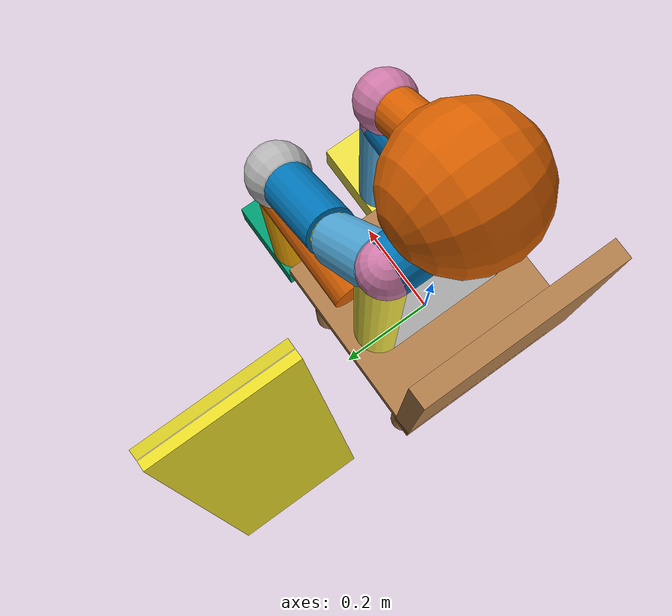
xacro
<?xml version="1.0"?>
<robot name="robot" xmlns:xacro="http://www.ros.org/wiki/xacro">
<!--
Robot model taken from http://wiki.ros.org/pr2_mechanism/Tutorials/SImple%20URDF-Controller%20Example
-->
  <xacro:include filename="$(find human_model_gazebo)/urdf/wheel.xacro"/>

  <xacro:property name="deg_to_rad" value="0.01745329251994329577"/>

  <!-- Constants for robot dimensions -->
  <xacro:property name="human_back_length" value="0.5" />
  <xacro:property name="length" value="0.4" />
  <xacro:property name="width" value="0.4" />
  <xacro:property name="wheel_radius" value="0.11" /> <!-- Link 1 -->
  <xacro:property name="thickness" value="0.086" /> <!-- Link 2 -->
  <xacro:property name="axel_offset" value="0.05" /> <!-- Space btw top of beam and the each joint -->
  <xacro:property name="steer_offset" value="0.02" /> <!-- Link 1 -->
  <xacro:property name="steer_height" value="0.4" />
  <xacro:property name="board_length" value="0.8" />
  <xacro:property name="board_width" value="0.3" />

  <!-- Links: inertial,visual,collision -->
  <link name="base_link">
    <inertial>
      <origin xyz="0 0  0.2" rpy="0 0 0"/>
      <mass value="5"/>
      <inertia ixx="5" ixy="0" ixz="0" iyy="5" iyz="0" izz="5"/>
    </inertial>
    <visual>
      <geometry>
        <box size="${length} ${width} 0.04"/>
      </geometry>
    </visual>
    <collision>

      <origin xyz="0 0 0"/>
      <geometry>
        <box size="${length} ${width} 0.04"/>
      </geometry>
    </collision>
  </link>

  <link name="base_footprint">
    <visual>
      <geometry>
        <sphere radius="0.01"/>
      </geometry>
    </visual>
    <collision>
      <origin xyz="0 0 0"/>
      <geometry>
        <sphere radius="0.00000001"/>
      </geometry>
    </collision>
  </link>
  <joint name="base_footprint_joint" type="fixed">
    <origin xyz="0 0 ${wheel_radius}" rpy="0 0 0"/>
    <child link="base_link"/>
    <parent link="base_footprint"/>
  </joint>

  <!-- Links: inertial,visual,collision -->
  <link name="back_link">
    <inertial>
      <!-- origin is relative -->
      <origin xyz="0 0 0" rpy="0 0 0"/>
      <mass value="5"/>
      <inertia ixx="5" ixy="0" ixz="0" iyy="5" iyz="0" izz="5"/>
    </inertial>
    <visual>
      <geometry>
        <box size="${human_back_length} ${width} 0.04"/>
      </geometry>
    </visual>
    <collision>
      <!-- origin is relative -->
      <origin xyz="0 0 0"/>
      <geometry>
        <box size="${length} ${width} 0.04"/>
      </geometry>
    </collision>
  </link>
  <joint name="base_back_joint" type="fixed">
      <origin xyz="${-length/2.0 + 0.02} 0 ${length/2.0}" rpy="0 ${-90 * deg_to_rad} 0"/>
    <child link="back_link"/>
    <parent link="base_link"/>
  </joint>

  <!-- Links: inertial,visual,collision -->
  <link name="panelfront_link">
    <inertial>
      <!-- origin is relative -->
      <origin xyz="0 0 0" rpy="0 0 0"/>
      <mass value="5"/>
      <inertia ixx="5" ixy="0" ixz="0" iyy="5" iyz="0" izz="5"/>
    </inertial>
    <visual>
      <geometry>
        <box size="${board_length} ${board_width} 0.02"/>
      </geometry>
    </visual>
    <collision>
      <!-- origin is relative -->
      <origin xyz="0 0 0"/>
      <geometry>
        <box size="${board_length} ${board_width} 0.02"/>
      </geometry>
    </collision>
  </link>

  <joint name="base_panelfront_joint" type="fixed">
      <origin xyz="0.08 0.45 -0.005" rpy="0 ${80 * deg_to_rad} 0"/>
    <child link="panelfront_link"/>
    <parent link="base_link"/>
  </joint>

  <!-- Links: inertial,visual,collision -->
  <link name="panelback_link">
    <inertial>
      <!-- origin is relative -->
      <origin xyz="0 0 0" rpy="0 0 0"/>
      <mass value="5"/>
      <inertia ixx="5" ixy="0" ixz="0" iyy="5" iyz="0" izz="5"/>
    </inertial>
    <visual>
      <geometry>
        <box size="${board_length} ${board_width} 0.02"/>
      </geometry>
    </visual>
    <collision>
      <!-- origin is relative -->
      <origin xyz="0 0 0"/>
      <geometry>
        <box size="${board_length} ${board_width} 0.02"/>
      </geometry>
    </collision>
  </link>

  <joint name="base_panelback_joint" type="fixed">
     <origin xyz="-0.08 0.45 -0.005" rpy="0 ${-80 * deg_to_rad} 0"/>
    <child link="panelback_link"/>
    <parent link="base_link"/>
  </joint>

  <!-- Wheels -->
  <front_wheel name="front_right" parent="base" radius="${wheel_radius}" thickness="${thickness}"
      length="${length}" width="${width}" axel_offset="${axel_offset}" right_left="1" steer_height="${steer_height}">
  </front_wheel>
  <front_wheel name="front_left" parent="base" radius="${wheel_radius}" thickness="${thickness}"
      length="${length}" width="${width}" axel_offset="${axel_offset}" right_left="-1" steer_height="${steer_height}">
  </front_wheel>
  <rear_wheel name="rear_right" parent="base" radius="${wheel_radius}" thickness="${thickness}"
      length="${length}" width="${width}" axel_offset="${axel_offset}" right_left="1" steer_height="${steer_height}">
  </rear_wheel>
  <rear_wheel name="rear_left" parent="base" radius="${wheel_radius}" thickness="${thickness}"
      length="${length}" width="${width}" axel_offset="${axel_offset}" right_left="-1" steer_height="${steer_height}">
  </rear_wheel>

  <!-- Links: inertial,visual,collision -->
  <link name="body_link">
    <inertial>
      <!-- origin is relative -->
      <origin xyz="0 0 0" rpy="0 0 0"/>
      <mass value="5"/>
      <inertia ixx="5" ixy="0" ixz="0" iyy="5" iyz="0" izz="5"/>
    </inertial>
    <visual>
      <geometry>
        <box size="${human_back_length} 0.25 0.1"/>
      </geometry>
    </visual>
    <collision>
      <!-- origin is relative -->
      <origin xyz="0 0 0"/>
      <geometry>
        <box size="${human_back_length} 0.25 0.1"/>
      </geometry>
    </collision>
  </link>
  <joint name="base_body_joint" type="fixed">
      <origin xyz="-0.0 0 ${human_back_length/2.0}" rpy="0 ${-90 * deg_to_rad} 0"/>
    <child link="body_link"/>
    <parent link="base_link"/>
  </joint>

  <link name="bodyright_link">
    <inertial>
      <!-- origin is relative -->
      <origin xyz="0 0 0" rpy="0 0 0"/>
      <mass value="5"/>
      <inertia ixx="5" ixy="0" ixz="0" iyy="5" iyz="0" izz="5"/>
    </inertial>
    <visual>
      <geometry>
        <cylinder radius="0.05" length="${human_back_length}"/>
      </geometry>
    </visual>
    <collision>
      <!-- origin is relative -->
      <origin xyz="0 0 0"/>
      <geometry>
        <cylinder radius="0.05" length="${human_back_length}"/>
      </geometry>
    </collision>
  </link>
  <joint name="body_bodyright_joint" type="fixed">
      <origin xyz="0.0 -0.125 0" rpy="0 ${-90 * deg_to_rad} 0"/>
    <child link="bodyright_link"/>
    <parent link="body_link"/>
  </joint>

  <!-- left leg -->
  <link name="bodyleft_link">
    <inertial>
      <!-- origin is relative -->
      <origin xyz="0 0 0" rpy="0 0 0"/>
      <mass value="5"/>
      <inertia ixx="5" ixy="0" ixz="0" iyy="5" iyz="0" izz="5"/>
    </inertial>
    <visual>
      <geometry>
        <cylinder radius="0.05" length="${human_back_length}"/>
      </geometry>
    </visual>
    <collision>
      <!-- origin is relative -->
      <origin xyz="0 0 0"/>
      <geometry>
        <cylinder radius="0.05" length="${human_back_length}"/>
      </geometry>
    </collision>
  </link>
  <joint name="body_bodyleft_joint" type="fixed">
      <origin xyz="0.0 0.125 0" rpy="0 ${-90 * deg_to_rad} 0"/>
    <child link="bodyleft_link"/>
    <parent link="body_link"/>
  </joint>
0  <link name="legright1_link">
    <inertial>
      <!-- origin is relative -->
0gin xyz="0 0 0" rpy="0 0 0"/>
      <mass value="5"/>
      <inertia ixx="5" ixy="0" ixz="0" iyy="5" iyz="0" izz="5"/>
    </inertial>
    <visual>
      <geometry>
        <cylinder radius="0.05" length="0.25"/>
      </geometry>
    </visual>
    <collision>
      <!-- origin is relative -->
      <origin xyz="0 0 0"/>
      <geometry>
       <cylinder radius="0.05" length="0.25"/>
      </geometry>
    </collision>
  </link>
  <joint name="bodyright_legright1_joint" type="fixed">
      <origin xyz="-0.2 0 ${human_back_length/2-0.075}" rpy="0 ${-90 * deg_to_rad} 0"/>
    <child link="legright1_link"/>
    <parent link="bodyright_link"/>
  </joint>

  <link name="legleft1_link">
    <inertial>
      <!-- origin is relative -->
      <origin xyz="0 0 0" rpy="0 0 0"/>
      <mass value="5"/>
      <inertia ixx="5" ixy="0" ixz="0" iyy="5" iyz="0" izz="5"/>
    </inertial>
    <visual>
      <geometry>
        <cylinder radius="0.05" length="0.25"/>
      </geometry>
    </visual>
    <collision>
      <!-- origin is relative -->
      <origin xyz="0 0 0"/>
      <geometry>
        <cylinder radius="0.05" length="0.25"/>
      </geometry>
    </collision>
  </link>
  <joint name="bodyleft_legleft1_joint" type="fixed">
      <origin xyz="-0.2 0 ${human_back_length/2-0.075}" rpy="0 ${-90 * deg_to_rad} 0"/>
    <child link="legleft1_link"/>
    <parent link="bodyleft_link"/>
  </joint>

  <link name="legright2_link">
    <inertial>
      <!-- origin is relative -->
      <origin xyz="0 0 0" rpy="0 0 0"/>
      <mass value="5"/>
      <inertia ixx="5" ixy="0" ixz="0" iyy="5" iyz="0" izz="5"/>
    </inertial>
    <visual>
      <geometry>
        <sphere radius="0.05"/>
      </geometry>
    </visual>
    <collision>
      <!-- origin is relative -->
      <origin xyz="0 0 0"/>
      <geometry>
        <sphere radius="0.05"/>
      </geometry>
    </collision>
  </link>
  <joint name="legright1_legright2_joint" type="fixed">
      <origin xyz="0 0 0.125" rpy="0 0 0"/>
    <child link="legright2_link"/>
    <parent link="legright1_link"/>
  </joint>

  <link name="legleft2_link">
    <inertial>
      <!-- origin is relative -->
      <origin xyz="0 0 0" rpy="0 0 0"/>
      <mass value="5"/>
      <inertia ixx="5" ixy="0" ixz="0" iyy="5" iyz="0" izz="5"/>
    </inertial>
    <visual>
      <geometry>
        <sphere radius="0.05"/>
      </geometry>
    </visual>
    <collision>
      <!-- origin is relative -->
      <origin xyz="0 0 0"/>
      <geometry>
        <sphere radius="0.05"/>
      </geometry>
    </collision>
  </link>
  <joint name="legleft1_legleft2_joint" type="fixed">
      <origin xyz="0 0 0.125" rpy="0 0 0"/>
    <child link="legleft2_link"/>
    <parent link="legleft1_link"/>
  </joint>

  <link name="legleft3_link">
    <inertial>
      <!-- origin is relative -->
      <origin xyz="0 0 0" rpy="0 0 0"/>
      <mass value="5"/>
      <inertia ixx="5" ixy="0" ixz="0" iyy="5" iyz="0" izz="5"/>
    </inertial>
    <visual>
      <geometry>
        <cylinder radius="0.05" length="0.45"/>
      </geometry>
    </visual>
    <collision>
      <!-- origin is relative -->
      <origin xyz="0 0 0"/>
      <geometry>
        <cylinder radius="0.05" length="0.45"/>
      </geometry>
    </collision>
  </link>
  <joint name="legleft2_legleft3_joint" type="fixed">
      <origin xyz="0.225 0 0" rpy="0 ${-90 * deg_to_rad} 0"/>
    <child link="legleft3_link"/>
    <parent link="legleft2_link"/>
  </joint>

  <link name="legright3_link">
    <inertial>
      <!-- origin is relative -->
      <origin xyz="0 0 0" rpy="0 0 0"/>
      <mass value="5"/>
      <inertia ixx="5" ixy="0" ixz="0" iyy="5" iyz="0" izz="5"/>
    </inertial>
    <visual>
      <geometry>
        <cylinder radius="0.05" length="0.45"/>
      </geometry>
    </visual>
    <collision>
      <!-- origin is relative -->
      <origin xyz="0 0 0"/>
      <geometry>
        <cylinder radius="0.05" length="0.45"/>
      </geometry>
    </collision>
  </link>
  <joint name="legright2_legright3_joint" type="fixed">
      <origin xyz="0.225 0 0" rpy="0 ${-90 * deg_to_rad} 0"/>
    <child link="legright3_link"/>
    <parent link="legright2_link"/>
  </joint>

  <link name="footleft_link">
    <inertial>
      <!-- origin is relative -->
      <origin xyz="0 0 0" rpy="0 0 0"/>
      <mass value="5"/>
      <inertia ixx="5" ixy="0" ixz="0" iyy="5" iyz="0" izz="5"/>
    </inertial>
    <visual>
      <geometry>
        <box size="0.2 0.1 0.08"/>
      </geometry>
    </visual>
    <collision>
      <!-- origin is relative -->
      <origin xyz="0 0 0"/>
      <geometry>
        <box size="0.2 0.1 0.05"/>
      </geometry>
    </collision>
  </link>
  <joint name="legleft3_footleft_joint" type="fixed">
      <origin xyz="0.05 0 -${0.45*0.5}" rpy="0 0 0"/>
    <child link="footleft_link"/>
    <parent link="legleft3_link"/>
  </joint>

  <link name="footright_link">
    <inertial>
      <!-- origin is relative -->
      <origin xyz="0 0 0" rpy="0 0 0"/>
      <mass value="5"/>
      <inertia ixx="5" ixy="0" ixz="0" iyy="5" iyz="0" izz="5"/>
    </inertial>
    <visual>
      <geometry>
        <box size="0.2 0.1 0.08"/>
      </geometry>
    </visual>
    <collision>
      <!-- origin is relative -->
      <origin xyz="0 0 0"/>
      <geometry>
        <box size="0.2 0.1 0.05"/>
      </geometry>
    </collision>
  </link>
  <joint name="legrihgt3_footrihgt_joint" type="fixed">
      <origin xyz="0.05 0 -${0.45*0.5}" rpy="0 0 0"/>
    <child link="footright_link"/>
    <parent link="legright3_link"/>
  </joint>

  <!-- Chest -->
  <link name="chest_link">
    <inertial>
      <!-- origin is relative -->
      <origin xyz="0 0 0" rpy="0 0 0"/>
      <mass value="5"/>
      <inertia ixx="5" ixy="0" ixz="0" iyy="5" iyz="0" izz="5"/>
    </inertial>
    <visual>
      <geometry>
        <cylinder radius="0.05" length="0.25"/>
      </geometry>
    </visual>
    <collision>
      <!-- origin is relative -->
      <origin xyz="0 0 0"/>
      <geometry>
        <cylinder radius="0.05" length="0.25"/>
      </geometry>
    </collision>
  </link>
  <joint name="body_chest_joint" type="fixed">
      <origin xyz="0.25 0 0" rpy="${-90 * deg_to_rad} 0 0"/>
    <child link="chest_link"/>
    <parent link="body_link"/>
  </joint>

  <!-- Head -->
  <link name="head_link">
    <inertial>
      <!-- origin is relative -->
      <origin xyz="0 0 0" rpy="0 0 0"/>
      <mass value="5"/>
      <inertia ixx="5" ixy="0" ixz="0" iyy="5" iyz="0" izz="5"/>
    </inertial>
    <visual>
      <geometry>
        <sphere radius="0.125"/>
      </geometry>
    </visual>
    <collision>
      <!-- origin is relative -->
      <origin xyz="0 0 0"/>
      <geometry>
        <sphere radius="0.125"/>
      </geometry>
    </collision>
  </link>
  <joint name="chest_head_joint" type="fixed">
      <origin xyz="0.15 0 0" rpy="0 0 0"/>
    <child link="head_link"/>
    <parent link="chest_link"/>
  </joint>

  <!-- Arm -->
  <link name="shoulderleft_link">
    <inertial>
      <!-- origin is relative -->
      <origin xyz="0 0 0" rpy="0 0 0"/>
      <mass value="5"/>
      <inertia ixx="5" ixy="0" ixz="0" iyy="5" iyz="0" izz="5"/>
    </inertial>
    <visual>
      <geometry>
        <sphere radius="0.05"/>
      </geometry>
    </visual>
    <collision>
      <!-- origin is relative -->
      <origin xyz="0 0 0"/>
      <geometry>
        <sphere radius="0.05"/>
      </geometry>
    </collision>
  </link>
  <joint name="bodyleft_shoulderleft_joint" type="fixed">
      <origin xyz="0 0 -0.25" rpy="0 0 0"/>
    <child link="shoulderleft_link"/>
    <parent link="bodyleft_link"/>
  </joint>

  <link name="shoulderright_link">
    <inertial>
      <!-- origin is relative -->
      <origin xyz="0 0 0" rpy="0 0 0"/>
      <mass value="5"/>
      <inertia ixx="5" ixy="0" ixz="0" iyy="5" iyz="0" izz="5"/>
    </inertial>
    <visual>
      <geometry>
        <sphere radius="0.05"/>
      </geometry>
    </visual>
    <collision>
      <!-- origin is relative -->
      <origin xyz="0 0 0"/>
      <geometry>
        <sphere radius="0.05"/>
      </geometry>
    </collision>
  </link>
  <joint name="bodyright_shoulderright_joint" type="fixed">
      <origin xyz="0 0 -0.25" rpy="0 0 0"/>
    <child link="shoulderright_link"/>
    <parent link="bodyright_link"/>
  </joint>

  <link name="armright1_link">
    <inertial>
      <!-- origin is relative -->
      <origin xyz="0 0 0" rpy="0 0 0"/>
      <mass value="5"/>
      <inertia ixx="5" ixy="0" ixz="0" iyy="5" iyz="0" izz="5"/>
    </inertial>
    <visual>
      <geometry>
        <cylinder radius="0.05" length="0.25"/>
      </geometry>
    </visual>
    <collision>
      <!-- origin is relative -->
      <origin xyz="0 0 0"/>
      <geometry>
        <cylinder radius="0.05" length="0.25"/>
      </geometry>
    </collision>
  </link>
  <joint name="shoulderright_armright1_joint" type="fixed">
      <origin xyz="-0.065 0 0.11" rpy="0 ${-30 * deg_to_rad} 0"/>
    <child link="armright1_link"/>
    <parent link="shoulderright_link"/>
  </joint>

  <link name="armleft1_link">
    <inertial>
      <!-- origin is relative -->
      <origin xyz="0 0 0" rpy="0 0 0"/>
      <mass value="5"/>
      <inertia ixx="5" ixy="0" ixz="0" iyy="5" iyz="0" izz="5"/>
    </inertial>
    <visual>
      <geometry>
        <cylinder radius="0.05" length="0.25"/>
      </geometry>
    </visual>
    <collision>
      <!-- origin is relative -->
      <origin xyz="0 0 0"/>
      <geometry>
        <cylinder radius="0.05" length="0.25"/>
      </geometry>
    </collision>
  </link>
  <joint name="shoulderleft_armleft1_joint" type="fixed">
      <origin xyz="-0.065 0 0.11" rpy="0 ${-30 * deg_to_rad} 0"/>
    <child link="armleft1_link"/>
    <parent link="shoulderleft_link"/>
  </joint>

  <link name="armright2_link">
    <inertial>
      <!-- origin is relative -->
      <origin xyz="0 0 0" rpy="0 0 0"/>
      <mass value="5"/>
      <inertia ixx="5" ixy="0" ixz="0" iyy="5" iyz="0" izz="5"/>
    </inertial>
    <visual>
      <geometry>
        <sphere radius="0.05"/>
      </geometry>
    </visual>
    <collision>
      <!-- origin is relative -->
      <origin xyz="0 0 0"/>
      <geometry>
        <sphere radius="0.05"/>
      </geometry>
    </collision>
  </link>
  <joint name="armright1_armright2_joint" type="fixed">
      <origin xyz="0 0 0.125" rpy="0 0 0"/>
    <child link="armright2_link"/>
    <parent link="armright1_link"/>
  </joint>

  <link name="armleft2_link">
    <inertial>
      <!-- origin is relative -->
      <origin xyz="0 0 0" rpy="0 0 0"/>
      <mass value="5"/>
      <inertia ixx="5" ixy="0" ixz="0" iyy="5" iyz="0" izz="5"/>
    </inertial>
    <visual>
      <geometry>
        <sphere radius="0.05"/>
      </geometry>
    </visual>
    <collision>
      <!-- origin is relative -->
      <origin xyz="0 0 0"/>
      <geometry>
        <sphere radius="0.05"/>
      </geometry>
    </collision>
  </link>
  <joint name="armleft1_armleft2_joint" type="fixed">
      <origin xyz="0 0 0.125" rpy="0 0 0"/>
    <child link="armleft2_link"/>
    <parent link="armleft1_link"/>
  </joint>

  <link name="armleft3_link">
    <inertial>
      <!-- origin is relative -->
      <origin xyz="0 0 0" rpy="0 0 0"/>
      <mass value="5"/>
      <inertia ixx="5" ixy="0" ixz="0" iyy="5" iyz="0" izz="5"/>
    </inertial>
    <visual>
      <geometry>
        <cylinder radius="0.05" length="0.2"/>
      </geometry>
    </visual>
    <collision>
      <!-- origin is relative -->
      <origin xyz="0 0 0"/>
      <geometry>
        <cylinder radius="0.05" length="0.2"/>
      </geometry>
    </collision>
  </link>
  <joint name="armleft2_armleft3_joint" type="fixed">
      <origin xyz="-0.065 0 0.11" rpy="0 ${-30 * deg_to_rad} 0"/>
    <child link="armleft3_link"/>
    <parent link="armleft2_link"/>
  </joint>

  <link name="armright3_link">
    <inertial>
      <!-- origin is relative -->
      <origin xyz="0 0 0" rpy="0 0 0"/>
      <mass value="5"/>
      <inertia ixx="5" ixy="0" ixz="0" iyy="5" iyz="0" izz="5"/>
    </inertial>
    <visual>
      <geometry>
        <cylinder radius="0.05" length="0.2"/>
      </geometry>
    </visual>
    <collision>
      <!-- origin is relative -->
      <origin xyz="0 0 0"/>
      <geometry>
        <cylinder radius="0.05" length="0.2"/>
      </geometry>
    </collision>
  </link>
  <joint name="armright2_armright3_joint" type="fixed">
      <origin xyz="-0.065 0 0.11" rpy="0 ${-30 * deg_to_rad} 0"/>
    <child link="armright3_link"/>
    <parent link="armright2_link"/>
  </joint>

  <link name="handright_link">
    <inertial>
      <!-- origin is relative -->
      <origin xyz="0 0 0" rpy="0 0 0"/>
      <mass value="5"/>
      <inertia ixx="5" ixy="0" ixz="0" iyy="5" iyz="0" izz="5"/>
    </inertial>
    <visual>
      <geometry>
        <sphere radius="0.065"/>
      </geometry>
    </visual>
    <collision>
      <!-- origin is relative -->
      <origin xyz="0 0 0"/>
      <geometry>
        <sphere radius="0.065"/>
      </geometry>
    </collision>
  </link>
  <joint name="armrighht3_handright_joint" type="fixed">
      <origin xyz="0 0 ${0.2*0.5}" rpy="0 0 0"/>
    <child link="handright_link"/>
    <parent link="armright3_link"/>
  </joint>

  <link name="handleft_link">
    <inertial>
      <!-- origin is relative -->
      <origin xyz="0 0 0" rpy="0 0 0"/>
      <mass value="5"/>
      <inertia ixx="5" ixy="0" ixz="0" iyy="5" iyz="0" izz="5"/>
    </inertial>
    <visual>
      <geometry>
        <sphere radius="0.065"/>
      </geometry>
    </visual>
    <collision>
      <!-- origin is relative -->
      <origin xyz="0 0 0"/>
      <geometry>
        <sphere radius="0.065"/>
      </geometry>
    </collision>
  </link>
  <joint name="armleft3_handleft_joint" type="fixed">
      <origin xyz="0 0 ${0.2*0.5}" rpy="0 0 0"/>
    <child link="handleft_link"/>
    <parent link="armleft3_link"/>
  </joint>

  <!-- Colour -->
  <gazebo reference="base_link">
    <material>Gazebo/WoodFloor</material>
  </gazebo>

  <gazebo reference="back_link">
    <material>Gazebo/WoodFloor</material>
  </gazebo>

  <gazebo reference="panelfront_link">
    <material>Gazebo/Yellow</material>
  </gazebo>

  <gazebo reference="panelback_link">
    <material>Gazebo/Yellow</material>
  </gazebo>

  <gazebo reference="base_footprint">
    <material>Gazebo/Purple</material>
  </gazebo>

  <gazebo reference="body_link">
    <material>Gazebo/White</material>
  </gazebo>
</robot>

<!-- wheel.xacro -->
<robot xmlns:xacro="http://www.ros.org/wiki/xacro">
  <xacro:property name="steer_radius" value="0.03" /> <!-- Link 1 -->
  <xacro:property name="steer_effort"   value="10.0"/>
  <xacro:property name="steer_velocity" value="5.0"/>

  <macro name="front_wheel" params="name parent radius thickness length width axel_offset right_left steer_height ">
    <link name="${name}_steer_link">
      <inertial>
        <origin xyz="0 0 0.4" rpy="0 0 0"/>
        <mass value="1"/>
        <inertia ixx="0.2" ixy="0" ixz="0" iyy="0.2" iyz="0" izz="0.2"/>
      </inertial>
      <visual>
        <origin xyz="0 0 0.2" rpy="0 0 0"/>
        <geometry>
          <cylinder radius="${steer_radius}" length="${steer_height}"/>
        </geometry>
      </visual>
      <collision>
        <origin xyz="0 0 0.2" rpy="0 0 0"/>
        <geometry>
          <cylinder radius="${steer_radius}" length="${steer_height}"/>
        </geometry>
      </collision>
    </link>

    <joint name="${name}_steer_joint" type="fixed">
      <parent link="${parent}_link"/>
      <child link="${name}_steer_link"/>
      <origin xyz="${length/2-axel_offset} ${right_left*(width/2-axel_offset)} ${-steer_height}" rpy="0 0 0"/>
      <!--insert_block name="origin"/-->
      <axis xyz="0 0 1"/>
      <limit effort="${steer_effort}"
             lower="${-180.0 * deg_to_rad}" upper="${180.0 * deg_to_rad}"
             velocity="${steer_velocity}"/>
     </joint>

    <gazebo reference="${name}_steer_link">
      <material>Gazebo/WoodFloor</material>
    </gazebo>
    <gazebo reference="${name}_wheel_link">
      <material>Gazebo/WoodFloor</material>
    </gazebo>
  </macro>

  <macro name="rear_wheel" params="name parent radius thickness length width axel_offset right_left steer_height ">
    <link name="${name}_steer_link">
      <inertial>
        <origin xyz="0 0 0.4" rpy="0 0 0"/>
        <mass value="1"/>
        <inertia ixx="0.2" ixy="0" ixz="0" iyy="0.2" iyz="0" izz="0.2"/>
      </inertial>
      <visual>
        <origin xyz="0 0 0.2" rpy="0 0 0"/>
        <geometry>
          <cylinder radius="${steer_radius}" length="${steer_height}"/>
        </geometry>
      </visual>
      <collision>
        <origin xyz="0 0 0.2" rpy="0 0 0"/>
        <geometry>
          <cylinder radius="${steer_radius}" length="${steer_height}"/>
        </geometry>
      </collision>
    </link>

    <joint name="${name}_steer_joint" type="fixed">
      <parent link="${parent}_link"/>
      <child link="${name}_steer_link"/>
      <origin xyz="${-(length/2-axel_offset)} ${right_left*(width/2-axel_offset)} ${-steer_height}" rpy="0 0 0"/>
      <!--insert_block name="origin"/-->
      <axis xyz="0 0 1"/>
      <limit effort="${steer_effort}"
             lower="${-180.0 * deg_to_rad}" upper="${180.0 * deg_to_rad}"
             velocity="${steer_velocity}"/>
     </joint>

    <gazebo reference="${name}_steer_link">
      <material>Gazebo/WoodFloor</material>
    </gazebo>

  </macro>

</robot>
